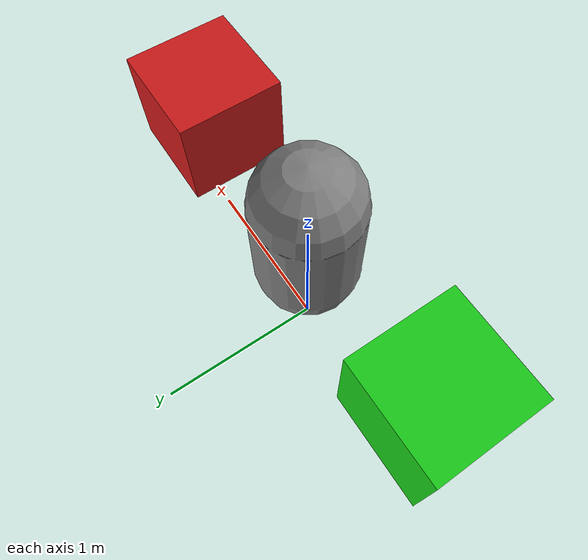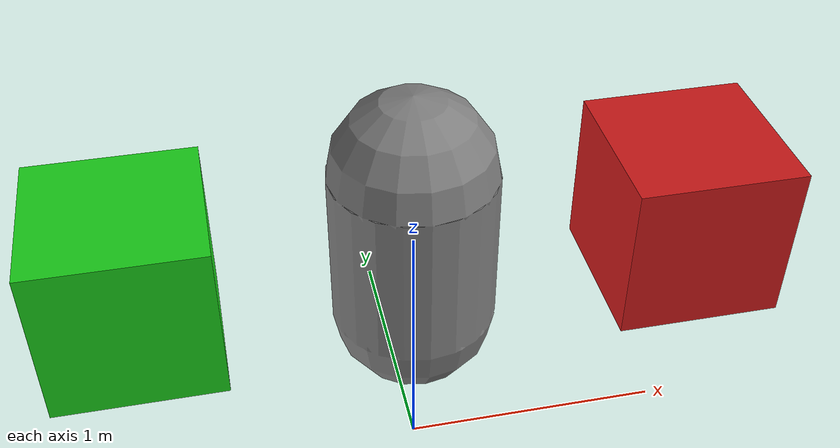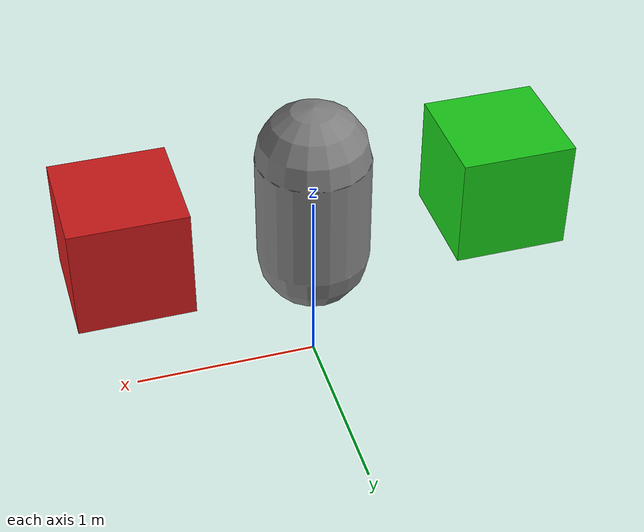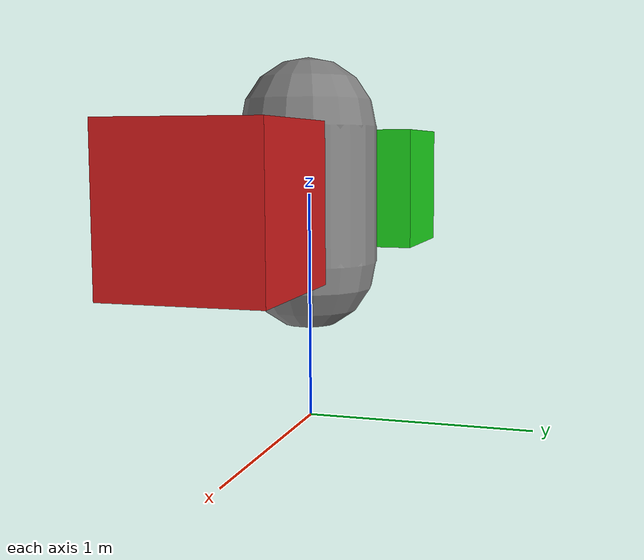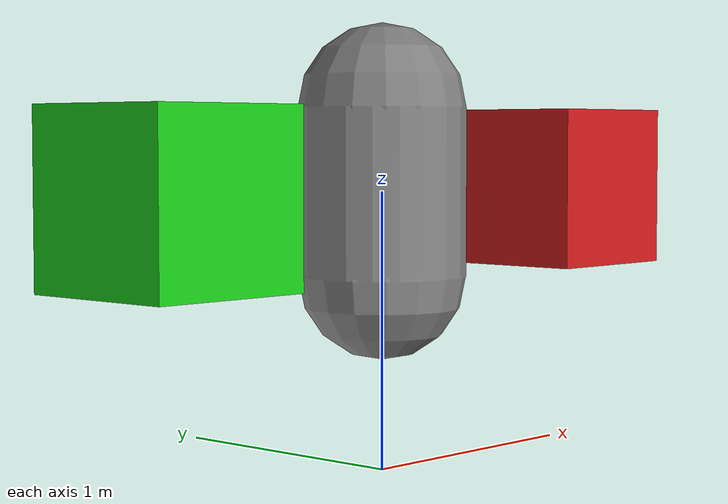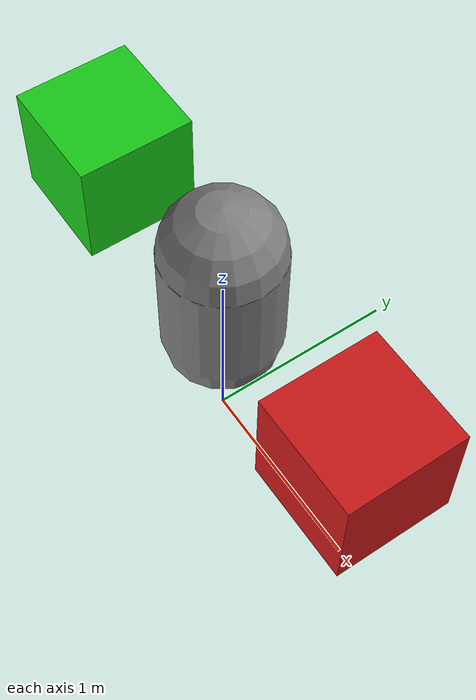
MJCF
<mujoco>
  <option gravity="0 0 -9.81"/>
  <worldbody>
    <body name="object" pos="0 0 1">
      <geom type="capsule" size="0.3 0.3" rgba="0.5 0.5 0.5 1"/>
      <joint name="initial_motion" type="slide" axis="1 0 0" />
    </body>
    <body name="fragment1" pos="-1 0 1">
      <geom type="box" size="0.3 0.3 0.3" density="1" rgba="0.1 0.8 0.1 1"/>
      <joint type="free"/>
    </body>
    <body name="fragment2" pos="1 0 1">
      <geom type="box" size="0.3 0.3 0.3" density="1" rgba="0.8 0.1 0.1 1"/>
      <joint type="free"/>
    </body>
  </worldbody>
</mujoco>
